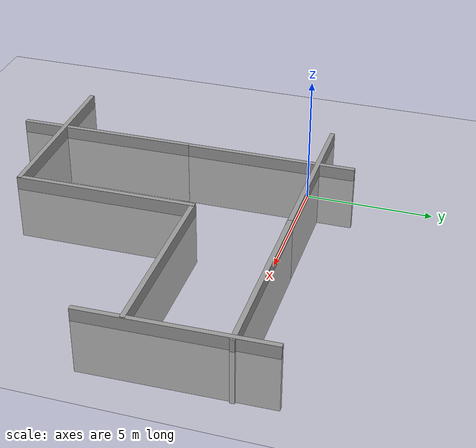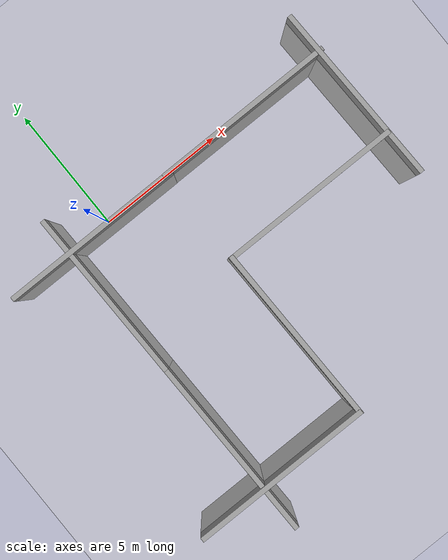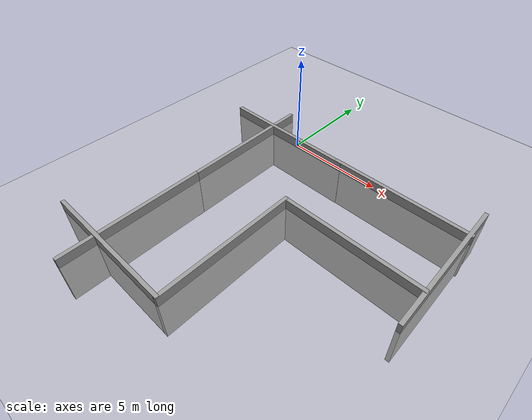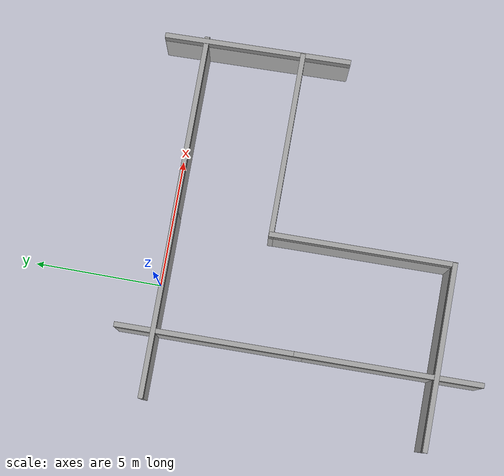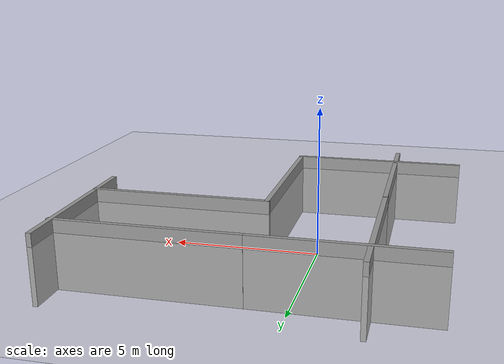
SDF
<sdf version='1.7'>
  <world name='default'>
    <plugin name='set_entity_state_plugin' filename='libset_entity_state.so'>
      <robot_name>my_robot</robot_name>
    </plugin>
    <plugin name='gazebo_ros_state' filename='libgazebo_ros_state.so'>
      <ros>
        <argument>model_states:=model_states_demo</argument>
      </ros>
      <update_rate>1.0</update_rate>
    </plugin>
    <light name='sun' type='directional'>
      <cast_shadows>1</cast_shadows>
      <pose>0 0 10 0 -0 0</pose>
      <diffuse>0.8 0.8 0.8 1</diffuse>
      <specular>0.2 0.2 0.2 1</specular>
      <attenuation>
        <range>1000</range>
        <constant>0.9</constant>
        <linear>0.01</linear>
        <quadratic>0.001</quadratic>
      </attenuation>
      <direction>-0.5 0.1 -0.9</direction>
      <spot>
        <inner_angle>0</inner_angle>
        <outer_angle>0</outer_angle>
        <falloff>0</falloff>
      </spot>
    </light>
    <model name='ground_plane'>
      <static>1</static>
      <link name='link'>
        <collision name='collision'>
          <geometry>
            <plane>
              <normal>0 0 1</normal>
              <size>100 100</size>
            </plane>
          </geometry>
          <surface>
            <friction>
              <ode>
                <mu>100</mu>
                <mu2>50</mu2>
              </ode>
              <torsional>
                <ode/>
              </torsional>
            </friction>
            <contact>
              <ode/>
            </contact>
            <bounce/>
          </surface>
          <max_contacts>10</max_contacts>
        </collision>
        <visual name='visual'>
          <cast_shadows>0</cast_shadows>
          <geometry>
            <plane>
              <normal>0 0 1</normal>
              <size>100 100</size>
            </plane>
          </geometry>
          <material>
            <script>
              <uri>file://media/materials/scripts/gazebo.material</uri>
              <name>Gazebo/Grey</name>
            </script>
          </material>
        </visual>
        <self_collide>0</self_collide>
        <enable_wind>0</enable_wind>
        <kinematic>0</kinematic>
      </link>
    </model>
    <gravity>0 0 -9.8</gravity>
    <magnetic_field>6e-06 2.3e-05 -4.2e-05</magnetic_field>
    <atmosphere type='adiabatic'/>
    <physics type='ode'>
      <max_step_size>0.002</max_step_size>
      <real_time_factor>5</real_time_factor>
      <real_time_update_rate>1500</real_time_update_rate>
      <!-- ODE-specific physics parameters for stability -->
      <ode>
        <solver>
          <type>quick</type>
          <iters>50</iters>
          <sor>1.3</sor>
        </solver>
        <constraints>
          <cfm>0.0</cfm>
          <erp>0.2</erp>
          <contact_max_correcting_vel>100.0</contact_max_correcting_vel>
          <contact_surface_layer>0.001</contact_surface_layer>
        </constraints>
      </ode>
    </physics>
    <scene>
      <ambient>0.4 0.4 0.4 1</ambient>
      <background>0.7 0.7 0.7 1</background>
      <shadows>1</shadows>
    </scene>
    <wind/>
    <spherical_coordinates>
      <surface_model>EARTH_WGS84</surface_model>
      <latitude_deg>0</latitude_deg>
      <longitude_deg>0</longitude_deg>
      <elevation>0</elevation>
      <heading_deg>0</heading_deg>
    </spherical_coordinates>
    <model name='grey_wall'>
      <static>1</static>
      <link name='link'>
        <pose>0 0 1.4 0 -0 0</pose>
        <collision name='collision'>
          <geometry>
            <box>
              <size>7.5 0.2 2.8</size>
            </box>
          </geometry>
          <max_contacts>10</max_contacts>
          <surface>
            <contact>
              <ode/>
            </contact>
            <bounce/>
            <friction>
              <torsional>
                <ode/>
              </torsional>
              <ode/>
            </friction>
          </surface>
        </collision>
        <visual name='visual'>
          <cast_shadows>0</cast_shadows>
          <geometry>
            <box>
              <size>7.5 0.2 2.8</size>
            </box>
          </geometry>
          <material>
            <script>
              <uri>model://grey_wall/materials/scripts</uri>
              <uri>model://grey_wall/materials/textures</uri>
              <name>vrc/grey_wall</name>
            </script>
          </material>
        </visual>
        <self_collide>0</self_collide>
        <enable_wind>0</enable_wind>
        <kinematic>0</kinematic>
      </link>
      <pose>-0.874687 -11.2335 -2.25701 0 -0 0</pose>
    </model>
    <model name='grey_wall_0'>
      <static>1</static>
      <link name='link'>
        <pose>0 0 1.4 0 -0 0</pose>
        <collision name='collision'>
          <geometry>
            <box>
              <size>7.5 0.2 2.8</size>
            </box>
          </geometry>
          <max_contacts>10</max_contacts>
          <surface>
            <contact>
              <ode/>
            </contact>
            <bounce/>
            <friction>
              <torsional>
                <ode/>
              </torsional>
              <ode/>
            </friction>
          </surface>
        </collision>
        <visual name='visual'>
          <cast_shadows>0</cast_shadows>
          <geometry>
            <box>
              <size>7.5 0.2 2.8</size>
            </box>
          </geometry>
          <material>
            <script>
              <uri>model://grey_wall/materials/scripts</uri>
              <uri>model://grey_wall/materials/textures</uri>
              <name>vrc/grey_wall</name>
            </script>
          </material>
        </visual>
        <self_collide>0</self_collide>
        <enable_wind>0</enable_wind>
        <kinematic>0</kinematic>
      </link>
      <pose>-0.747555 -0.035713 -2.30785 0 -0 0</pose>
    </model>
    <model name='grey_wall_1'>
      <static>1</static>
      <link name='link'>
        <pose>0 0 1.4 0 -0 0</pose>
        <collision name='collision'>
          <geometry>
            <box>
              <size>7.5 0.2 2.8</size>
            </box>
          </geometry>
          <max_contacts>10</max_contacts>
          <surface>
            <contact>
              <ode/>
            </contact>
            <bounce/>
            <friction>
              <torsional>
                <ode/>
              </torsional>
              <ode/>
            </friction>
          </surface>
        </collision>
        <visual name='visual'>
          <cast_shadows>0</cast_shadows>
          <geometry>
            <box>
              <size>7.5 0.2 2.8</size>
            </box>
          </geometry>
          <material>
            <script>
              <uri>model://grey_wall/materials/scripts</uri>
              <uri>model://grey_wall/materials/textures</uri>
              <name>vrc/grey_wall</name>
            </script>
          </material>
        </visual>
        <self_collide>0</self_collide>
        <enable_wind>0</enable_wind>
        <kinematic>0</kinematic>
      </link>
      <pose>6.35994 -3.92251 -2.27806 0 -0 0</pose>
    </model>
    <model name='grey_wall_2'>
      <static>1</static>
      <link name='link'>
        <pose>0 0 1.4 0 -0 0</pose>
        <collision name='collision'>
          <geometry>
            <box>
              <size>7.5 0.2 2.8</size>
            </box>
          </geometry>
          <max_contacts>10</max_contacts>
          <surface>
            <contact>
              <ode/>
            </contact>
            <bounce/>
            <friction>
              <torsional>
                <ode/>
              </torsional>
              <ode/>
            </friction>
          </surface>
        </collision>
        <visual name='visual'>
          <cast_shadows>0</cast_shadows>
          <geometry>
            <box>
              <size>7.5 0.2 2.8</size>
            </box>
          </geometry>
          <material>
            <script>
              <uri>model://grey_wall/materials/scripts</uri>
              <uri>model://grey_wall/materials/textures</uri>
              <name>vrc/grey_wall</name>
            </script>
          </material>
        </visual>
        <self_collide>0</self_collide>
        <enable_wind>0</enable_wind>
        <kinematic>0</kinematic>
      </link>
      <pose>6.37387 -0.026313 -2.30342 0 -0 0</pose>
    </model>
    <model name='grey_wall_3'>
      <static>1</static>
      <link name='link'>
        <pose>0 0 1.4 0 -0 0</pose>
        <collision name='collision'>
          <geometry>
            <box>
              <size>7.5 0.2 2.8</size>
            </box>
          </geometry>
          <max_contacts>10</max_contacts>
          <surface>
            <contact>
              <ode/>
            </contact>
            <bounce/>
            <friction>
              <torsional>
                <ode/>
              </torsional>
              <ode/>
            </friction>
          </surface>
        </collision>
        <visual name='visual'>
          <cast_shadows>0</cast_shadows>
          <geometry>
            <box>
              <size>7.5 0.2 2.8</size>
            </box>
          </geometry>
          <material>
            <script>
              <uri>model://grey_wall/materials/scripts</uri>
              <uri>model://grey_wall/materials/textures</uri>
              <name>vrc/grey_wall</name>
            </script>
          </material>
        </visual>
        <self_collide>0</self_collide>
        <enable_wind>0</enable_wind>
        <kinematic>0</kinematic>
      </link>
      <pose>10.0008 -2.10193 -2.29386 0 -0 1.59488</pose>
    </model>
    <model name='grey_wall_4'>
      <static>1</static>
      <link name='link'>
        <pose>0 0 1.4 0 -0 0</pose>
        <collision name='collision'>
          <geometry>
            <box>
              <size>7.5 0.2 2.8</size>
            </box>
          </geometry>
          <max_contacts>10</max_contacts>
          <surface>
            <contact>
              <ode/>
            </contact>
            <bounce/>
            <friction>
              <torsional>
                <ode/>
              </torsional>
              <ode/>
            </friction>
          </surface>
        </collision>
        <visual name='visual'>
          <cast_shadows>0</cast_shadows>
          <geometry>
            <box>
              <size>7.5 0.2 2.8</size>
            </box>
          </geometry>
          <material>
            <script>
              <uri>model://grey_wall/materials/scripts</uri>
              <uri>model://grey_wall/materials/textures</uri>
              <name>vrc/grey_wall</name>
            </script>
          </material>
        </visual>
        <self_collide>0</self_collide>
        <enable_wind>0</enable_wind>
        <kinematic>0</kinematic>
      </link>
      <pose>2.75693 -7.58601 -2.26922 0 -0 1.58177</pose>
    </model>
    <model name='grey_wall_5'>
      <static>1</static>
      <link name='link'>
        <pose>0 0 1.4 0 -0 0</pose>
        <collision name='collision'>
          <geometry>
            <box>
              <size>7.5 0.2 2.8</size>
            </box>
          </geometry>
          <max_contacts>10</max_contacts>
          <surface>
            <contact>
              <ode/>
            </contact>
            <bounce/>
            <friction>
              <torsional>
                <ode/>
              </torsional>
              <ode/>
            </friction>
          </surface>
        </collision>
        <visual name='visual'>
          <cast_shadows>0</cast_shadows>
          <geometry>
            <box>
              <size>7.5 0.2 2.8</size>
            </box>
          </geometry>
          <material>
            <script>
              <uri>model://grey_wall/materials/scripts</uri>
              <uri>model://grey_wall/materials/textures</uri>
              <name>vrc/grey_wall</name>
            </script>
          </material>
        </visual>
        <self_collide>0</self_collide>
        <enable_wind>0</enable_wind>
        <kinematic>0</kinematic>
      </link>
      <pose>-1.79015 -2.23795 -2.3115 0 -0 1.58177</pose>
    </model>
    <model name='grey_wall_6'>
      <static>1</static>
      <link name='link'>
        <pose>0 0 1.4 0 -0 0</pose>
        <collision name='collision'>
          <geometry>
            <box>
              <size>7.5 0.2 2.8</size>
            </box>
          </geometry>
          <max_contacts>10</max_contacts>
          <surface>
            <contact>
              <ode/>
            </contact>
            <bounce/>
            <friction>
              <torsional>
                <ode/>
              </torsional>
              <ode/>
            </friction>
          </surface>
        </collision>
        <visual name='visual'>
          <cast_shadows>0</cast_shadows>
          <geometry>
            <box>
              <size>7.5 0.2 2.8</size>
            </box>
          </geometry>
          <material>
            <script>
              <uri>model://grey_wall/materials/scripts</uri>
              <uri>model://grey_wall/materials/textures</uri>
              <name>vrc/grey_wall</name>
            </script>
          </material>
        </visual>
        <self_collide>0</self_collide>
        <enable_wind>0</enable_wind>
        <kinematic>0</kinematic>
      </link>
      <pose>-1.71011 -9.35087 -2.29922 0 -0 1.58177</pose>
    </model>

    <gui fullscreen='0'>
      <camera name='user_camera'>
        <pose>6.24905 -2.38144 12.46 0 1.0338 3.06644</pose>
        <view_controller>orbit</view_controller>
        <projection_type>perspective</projection_type>
      </camera>
    </gui>
  </world>
</sdf>
